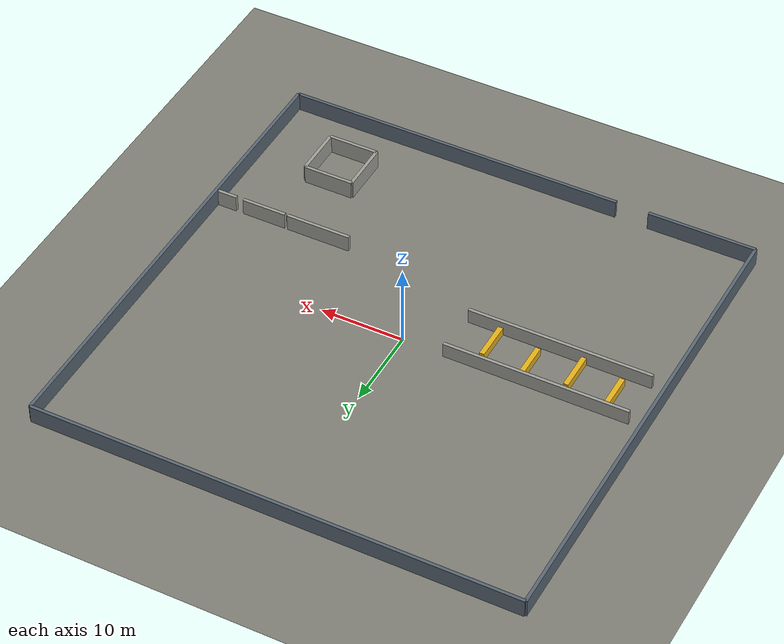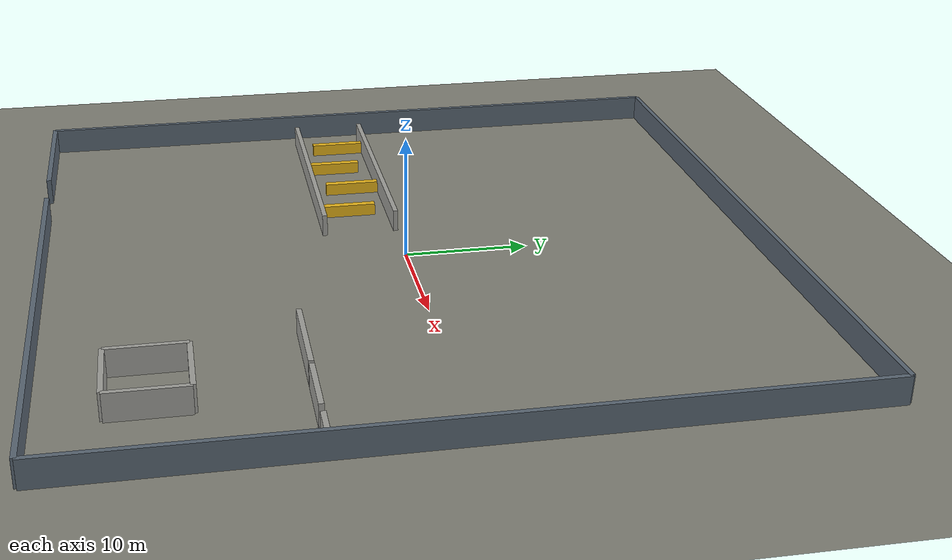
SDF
<sdf version="1.6">
 <world name="w2_container_yard">
  <physics name="4ms" type="ignored">
   <max_step_size>0.004</max_step_size>
   <real_time_factor>1.0</real_time_factor>
  </physics>
  <plugin filename="ignition-gazebo-physics-system" name="gz::sim::systems::Physics"/>
  <plugin filename="ignition-gazebo-scene-broadcaster-system" name="gz::sim::systems::SceneBroadcaster"/>
  <plugin filename="ignition-gazebo-user-commands-system" name="gz::sim::systems::UserCommands"/>
  <plugin filename="ignition-gazebo-sensors-system" name="gz::sim::systems::Sensors">
   <render_engine>ogre2</render_engine>
  </plugin>
  <light type="directional" name="sun">
   <pose>0 0 500 0 0 0</pose>
   <diffuse>0.85 0.85 0.8 1</diffuse>
   <specular>0.2 0.2 0.2 1</specular>
   <direction>-0.4 0.2 -0.9</direction>
  </light>
  <model name="ground_plane">
   <static>true</static>
   <link name="link">
    <collision name="collision">
     <geometry><plane><normal>0 0 1</normal><size>300.0 300.0</size></plane></geometry>
    </collision>
    <visual name="visual">
     <geometry><plane><normal>0 0 1</normal><size>300.0 300.0</size></plane></geometry>
     <material>
      <ambient>0.5 0.5 0.46 1</ambient>
      <diffuse>0.5 0.5 0.46 1</diffuse>
      <specular>0.05 0.05 0.05 1</specular>
     </material>
    </visual>
   </link>
  </model>
  <model name="fence_S0">
   <static>true</static>
   <pose>-22.5000 -29.0000 1.1000 0 0 0.00000</pose>
   <link name="link">
    <collision name="c"><geometry><box><size>13.0000 0.4000 2.2000</size></box></geometry></collision>
    <visual name="v">
     <geometry><box><size>13.0000 0.4000 2.2000</size></box></geometry>
     <material>
      <ambient>0.350 0.400 0.450 1</ambient>
      <diffuse>0.350 0.400 0.450 1</diffuse>
      <specular>0.1 0.1 0.1 1</specular>
     </material>
    </visual>
   </link>
  </model>
  <model name="fence_S1">
   <static>true</static>
   <pose>8.5000 -29.0000 1.1000 0 0 0.00000</pose>
   <link name="link">
    <collision name="c"><geometry><box><size>41.0000 0.4000 2.2000</size></box></geometry></collision>
    <visual name="v">
     <geometry><box><size>41.0000 0.4000 2.2000</size></box></geometry>
     <material>
      <ambient>0.350 0.400 0.450 1</ambient>
      <diffuse>0.350 0.400 0.450 1</diffuse>
      <specular>0.1 0.1 0.1 1</specular>
     </material>
    </visual>
   </link>
  </model>
  <model name="fence_N0">
   <static>true</static>
   <pose>0.0000 29.0000 1.1000 0 0 0.00000</pose>
   <link name="link">
    <collision name="c"><geometry><box><size>58.0000 0.4000 2.2000</size></box></geometry></collision>
    <visual name="v">
     <geometry><box><size>58.0000 0.4000 2.2000</size></box></geometry>
     <material>
      <ambient>0.350 0.400 0.450 1</ambient>
      <diffuse>0.350 0.400 0.450 1</diffuse>
      <specular>0.1 0.1 0.1 1</specular>
     </material>
    </visual>
   </link>
  </model>
  <model name="fence_W0">
   <static>true</static>
   <pose>-29.0000 0.0000 1.1000 0 0 1.57080</pose>
   <link name="link">
    <collision name="c"><geometry><box><size>58.0000 0.4000 2.2000</size></box></geometry></collision>
    <visual name="v">
     <geometry><box><size>58.0000 0.4000 2.2000</size></box></geometry>
     <material>
      <ambient>0.350 0.400 0.450 1</ambient>
      <diffuse>0.350 0.400 0.450 1</diffuse>
      <specular>0.1 0.1 0.1 1</specular>
     </material>
    </visual>
   </link>
  </model>
  <model name="fence_E0">
   <static>true</static>
   <pose>29.0000 0.0000 1.1000 0 0 1.57080</pose>
   <link name="link">
    <collision name="c"><geometry><box><size>58.0000 0.4000 2.2000</size></box></geometry></collision>
    <visual name="v">
     <geometry><box><size>58.0000 0.4000 2.2000</size></box></geometry>
     <material>
      <ambient>0.350 0.400 0.450 1</ambient>
      <diffuse>0.350 0.400 0.450 1</diffuse>
      <specular>0.1 0.1 0.1 1</specular>
     </material>
    </visual>
   </link>
  </model>
  <model name="chi_N">
   <static>true</static>
   <pose>-16.0000 0.0000 0.9000 0 0 0.00000</pose>
   <link name="link">
    <collision name="c"><geometry><box><size>22.0000 0.4000 1.8000</size></box></geometry></collision>
    <visual name="v">
     <geometry><box><size>22.0000 0.4000 1.8000</size></box></geometry>
     <material>
      <ambient>0.620 0.620 0.600 1</ambient>
      <diffuse>0.620 0.620 0.600 1</diffuse>
      <specular>0.1 0.1 0.1 1</specular>
     </material>
    </visual>
   </link>
  </model>
  <model name="chi_S">
   <static>true</static>
   <pose>-16.0000 -6.0000 0.9000 0 0 0.00000</pose>
   <link name="link">
    <collision name="c"><geometry><box><size>22.0000 0.4000 1.8000</size></box></geometry></collision>
    <visual name="v">
     <geometry><box><size>22.0000 0.4000 1.8000</size></box></geometry>
     <material>
      <ambient>0.620 0.620 0.600 1</ambient>
      <diffuse>0.620 0.620 0.600 1</diffuse>
      <specular>0.1 0.1 0.1 1</specular>
     </material>
    </visual>
   </link>
  </model>
  <model name="chi_b0">
   <static>true</static>
   <pose>-24.0000 -2.4000 0.5000 0 0 -1.57080</pose>
   <link name="link">
    <collision name="c"><geometry><box><size>4.8000 0.6000 1.0000</size></box></geometry></collision>
    <visual name="v">
     <geometry><box><size>4.8000 0.6000 1.0000</size></box></geometry>
     <material>
      <ambient>0.900 0.700 0.100 1</ambient>
      <diffuse>0.900 0.700 0.100 1</diffuse>
      <specular>0.1 0.1 0.1 1</specular>
     </material>
    </visual>
   </link>
  </model>
  <model name="chi_b1">
   <static>true</static>
   <pose>-19.0000 -3.6000 0.5000 0 0 1.57080</pose>
   <link name="link">
    <collision name="c"><geometry><box><size>4.8000 0.6000 1.0000</size></box></geometry></collision>
    <visual name="v">
     <geometry><box><size>4.8000 0.6000 1.0000</size></box></geometry>
     <material>
      <ambient>0.900 0.700 0.100 1</ambient>
      <diffuse>0.900 0.700 0.100 1</diffuse>
      <specular>0.1 0.1 0.1 1</specular>
     </material>
    </visual>
   </link>
  </model>
  <model name="chi_b2">
   <static>true</static>
   <pose>-14.0000 -2.4000 0.5000 0 0 -1.57080</pose>
   <link name="link">
    <collision name="c"><geometry><box><size>4.8000 0.6000 1.0000</size></box></geometry></collision>
    <visual name="v">
     <geometry><box><size>4.8000 0.6000 1.0000</size></box></geometry>
     <material>
      <ambient>0.900 0.700 0.100 1</ambient>
      <diffuse>0.900 0.700 0.100 1</diffuse>
      <specular>0.1 0.1 0.1 1</specular>
     </material>
    </visual>
   </link>
  </model>
  <model name="chi_b3">
   <static>true</static>
   <pose>-9.0000 -3.6000 0.5000 0 0 1.57080</pose>
   <link name="link">
    <collision name="c"><geometry><box><size>4.8000 0.6000 1.0000</size></box></geometry></collision>
    <visual name="v">
     <geometry><box><size>4.8000 0.6000 1.0000</size></box></geometry>
     <material>
      <ambient>0.900 0.700 0.100 1</ambient>
      <diffuse>0.900 0.700 0.100 1</diffuse>
      <specular>0.1 0.1 0.1 1</specular>
     </material>
    </visual>
   </link>
  </model>
  <model name="pocket_S0">
   <static>true</static>
   <pose>19.0000 -24.0000 1.1000 0 0 0.00000</pose>
   <link name="link">
    <collision name="c"><geometry><box><size>6.0000 0.4000 2.2000</size></box></geometry></collision>
    <visual name="v">
     <geometry><box><size>6.0000 0.4000 2.2000</size></box></geometry>
     <material>
      <ambient>0.620 0.620 0.600 1</ambient>
      <diffuse>0.620 0.620 0.600 1</diffuse>
      <specular>0.1 0.1 0.1 1</specular>
     </material>
    </visual>
   </link>
  </model>
  <model name="pocket_N0">
   <static>true</static>
   <pose>19.0000 -18.0000 1.1000 0 0 0.00000</pose>
   <link name="link">
    <collision name="c"><geometry><box><size>6.0000 0.4000 2.2000</size></box></geometry></collision>
    <visual name="v">
     <geometry><box><size>6.0000 0.4000 2.2000</size></box></geometry>
     <material>
      <ambient>0.620 0.620 0.600 1</ambient>
      <diffuse>0.620 0.620 0.600 1</diffuse>
      <specular>0.1 0.1 0.1 1</specular>
     </material>
    </visual>
   </link>
  </model>
  <model name="pocket_W0">
   <static>true</static>
   <pose>16.0000 -21.0000 1.1000 0 0 1.57080</pose>
   <link name="link">
    <collision name="c"><geometry><box><size>6.0000 0.4000 2.2000</size></box></geometry></collision>
    <visual name="v">
     <geometry><box><size>6.0000 0.4000 2.2000</size></box></geometry>
     <material>
      <ambient>0.620 0.620 0.600 1</ambient>
      <diffuse>0.620 0.620 0.600 1</diffuse>
      <specular>0.1 0.1 0.1 1</specular>
     </material>
    </visual>
   </link>
  </model>
  <model name="pocket_E0">
   <static>true</static>
   <pose>22.0000 -21.0000 1.1000 0 0 1.57080</pose>
   <link name="link">
    <collision name="c"><geometry><box><size>6.0000 0.4000 2.2000</size></box></geometry></collision>
    <visual name="v">
     <geometry><box><size>6.0000 0.4000 2.2000</size></box></geometry>
     <material>
      <ambient>0.620 0.620 0.600 1</ambient>
      <diffuse>0.620 0.620 0.600 1</diffuse>
      <specular>0.1 0.1 0.1 1</specular>
     </material>
    </visual>
   </link>
  </model>
  <model name="nb_0">
   <static>true</static>
   <pose>15.9125 -10.0000 1.0000 0 0 0.00000</pose>
   <link name="link">
    <collision name="c"><geometry><box><size>7.8250 0.4000 2.0000</size></box></geometry></collision>
    <visual name="v">
     <geometry><box><size>7.8250 0.4000 2.0000</size></box></geometry>
     <material>
      <ambient>0.620 0.620 0.600 1</ambient>
      <diffuse>0.620 0.620 0.600 1</diffuse>
      <specular>0.1 0.1 0.1 1</specular>
     </material>
    </visual>
   </link>
  </model>
  <model name="nb_1">
   <static>true</static>
   <pose>22.8625 -10.0000 1.0000 0 0 0.00000</pose>
   <link name="link">
    <collision name="c"><geometry><box><size>5.3750 0.4000 2.0000</size></box></geometry></collision>
    <visual name="v">
     <geometry><box><size>5.3750 0.4000 2.0000</size></box></geometry>
     <material>
      <ambient>0.620 0.620 0.600 1</ambient>
      <diffuse>0.620 0.620 0.600 1</diffuse>
      <specular>0.1 0.1 0.1 1</specular>
     </material>
    </visual>
   </link>
  </model>
  <model name="nb_2">
   <static>true</static>
   <pose>27.7250 -10.0000 1.0000 0 0 0.00000</pose>
   <link name="link">
    <collision name="c"><geometry><box><size>2.5500 0.4000 2.0000</size></box></geometry></collision>
    <visual name="v">
     <geometry><box><size>2.5500 0.4000 2.0000</size></box></geometry>
     <material>
      <ambient>0.620 0.620 0.600 1</ambient>
      <diffuse>0.620 0.620 0.600 1</diffuse>
      <specular>0.1 0.1 0.1 1</specular>
     </material>
    </visual>
   </link>
  </model>
 </world>
</sdf>
